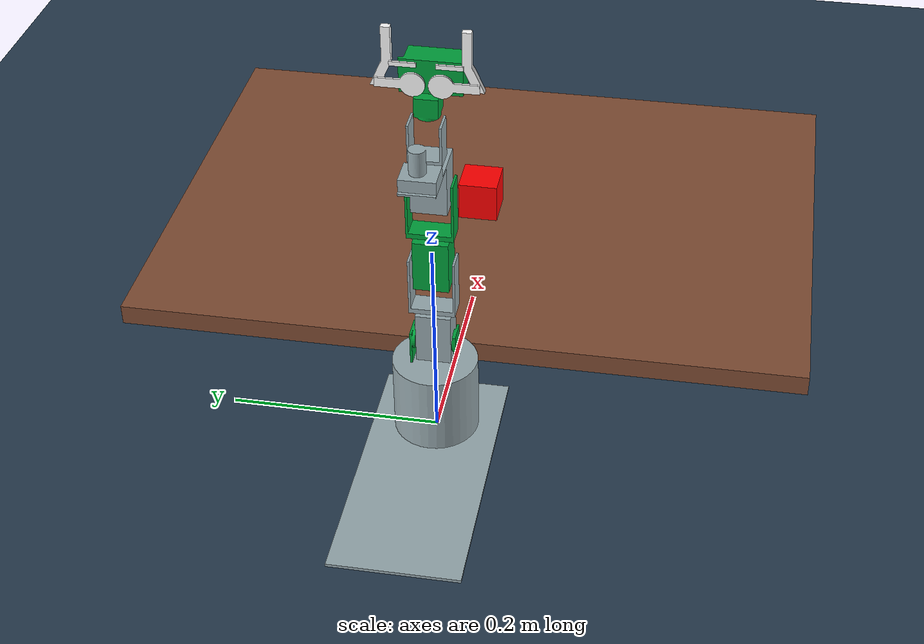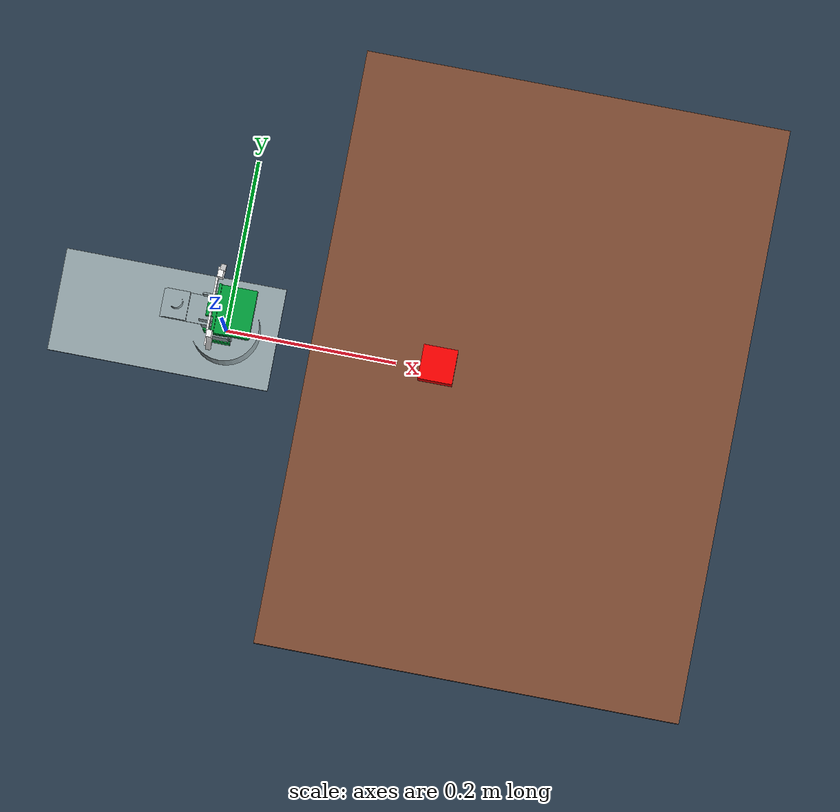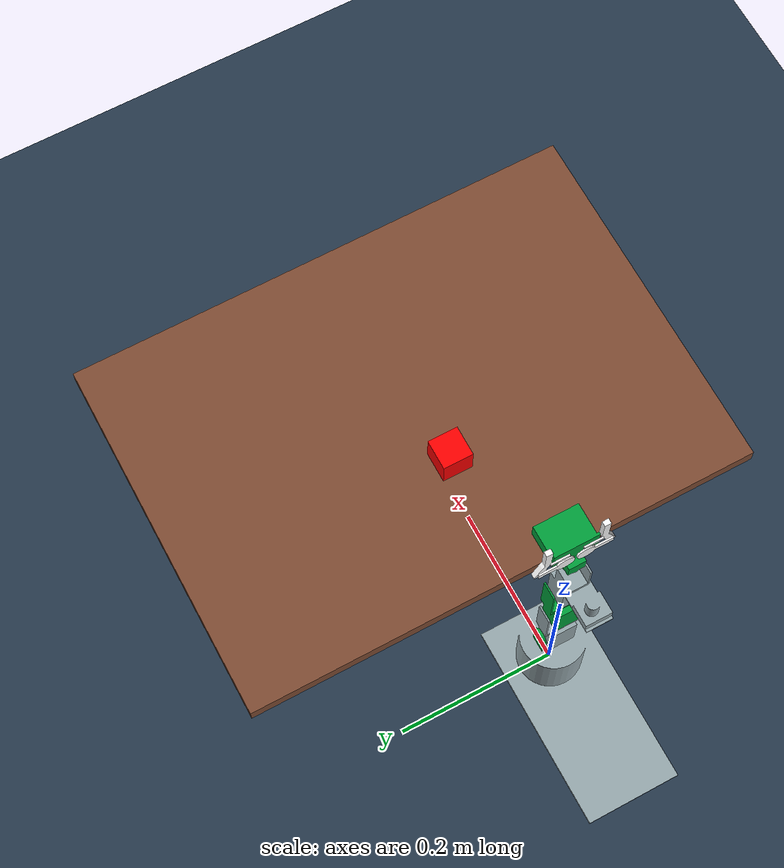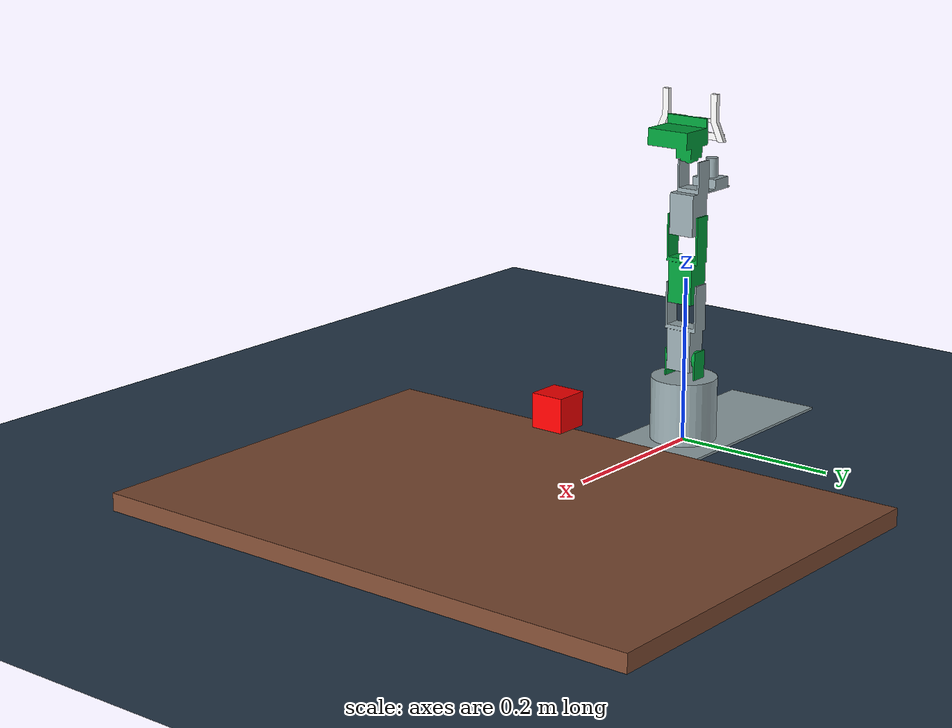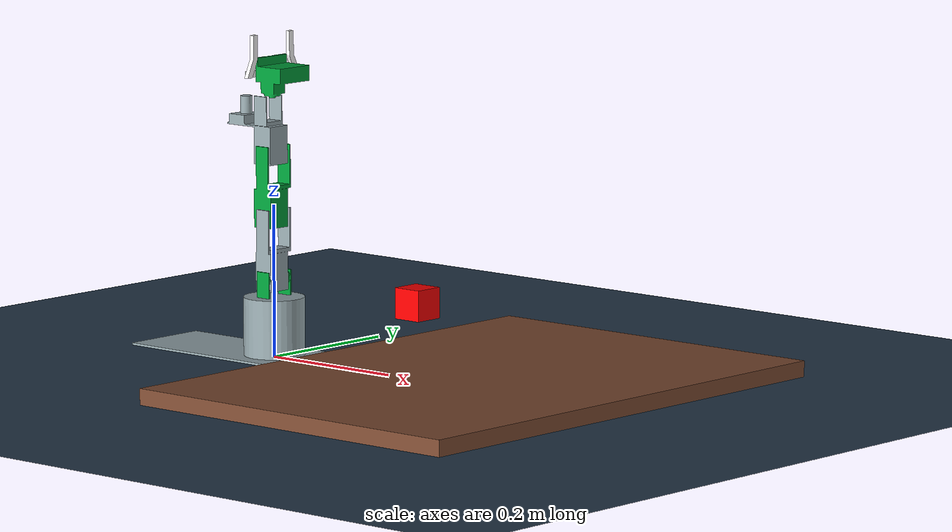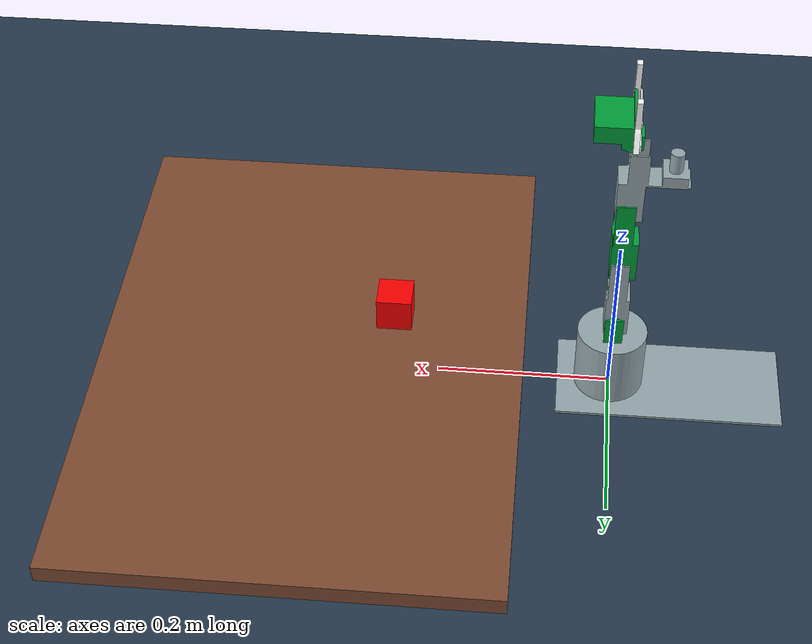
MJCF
<mujoco model="dofbot">
  <compiler angle="radian"/>

  <option timestep="0.005" integrator="implicitfast" jacobian="dense"/>

  <size njmax="200" nconmax="50" nstack="10000"/>

  <visual>
    <global offwidth="800" offheight="800"/>
    <quality shadowsize="2048"/>
    <map force="0.1" zfar="30"/>
    <rgba haze="0.15 0.25 0.35 1"/>
  </visual>

  <default>
    <joint limited="true" armature="0.01" damping="1" frictionloss="0.02"/>
    <geom friction="1.5"/>
  </default>

  <asset>
    <texture type="skybox" colorspace="auto" builtin="gradient" rgb1="0.3 0.5 0.7" rgb2="0 0 0" width="512" height="3072"/>
    <texture type="2d" colorspace="auto" name="texplane" builtin="checker" mark="cross" rgb1="0.2 0.3 0.4" rgb2="0.1 0.15 0.2" markrgb="0.8 0.8 0.8" width="512" height="512"/>
    <texture type="cube" colorspace="auto" name="texgeom" builtin="flat" mark="cross" rgb1="0.8 0.6 0.4" rgb2="0.8 0.6 0.4" markrgb="1 1 1" width="127" height="762"/>
    <material name="matplane" texture="texplane" texuniform="true" reflectance="0.3"/>
    <material name="matgeom" texture="texgeom" texuniform="true" rgba="0.8 0.6 0.4 1"/>
    <mesh name="base_link_collider" content_type="model/stl" file="/home/robousr/Dev/mujoco_ws/install/robotx_description/share/robotx_description/meshes/base_link_collider.STL"/>
    <mesh name="link1_collider" content_type="model/stl" file="/home/robousr/Dev/mujoco_ws/install/robotx_description/share/robotx_description/meshes/link1_collider.STL"/>
    <mesh name="link2_collider" content_type="model/stl" file="/home/robousr/Dev/mujoco_ws/install/robotx_description/share/robotx_description/meshes/link2_collider.STL"/>
    <mesh name="link3_collider" content_type="model/stl" file="/home/robousr/Dev/mujoco_ws/install/robotx_description/share/robotx_description/meshes/link3_collider.STL"/>
    <mesh name="link4_collider" content_type="model/stl" file="/home/robousr/Dev/mujoco_ws/install/robotx_description/share/robotx_description/meshes/link4_collider.STL"/>
    <mesh name="link5_collider" content_type="model/stl" file="/home/robousr/Dev/mujoco_ws/install/robotx_description/share/robotx_description/meshes/link5_collider.STL"/>
    <mesh name="link5a1_collider" content_type="model/stl" file="/home/robousr/Dev/mujoco_ws/install/robotx_description/share/robotx_description/meshes/link5a1_collider.STL"/>
    <mesh name="link5b1_collider" content_type="model/stl" file="/home/robousr/Dev/mujoco_ws/install/robotx_description/share/robotx_description/meshes/link5b1_collider.STL"/>
    <mesh name="link5a2_collider" content_type="model/stl" file="/home/robousr/Dev/mujoco_ws/install/robotx_description/share/robotx_description/meshes/link5a2_collider.STL"/>
    <mesh name="link5b2_collider" content_type="model/stl" file="/home/robousr/Dev/mujoco_ws/install/robotx_description/share/robotx_description/meshes/link5b2_collider.STL"/>
    <mesh name="link5a3_collider" content_type="model/stl" file="/home/robousr/Dev/mujoco_ws/install/robotx_description/share/robotx_description/meshes/link5a3_collider.STL"/>
    <mesh name="link5b3_collider" content_type="model/stl" file="/home/robousr/Dev/mujoco_ws/install/robotx_description/share/robotx_description/meshes/link5b3_collider.STL"/>
  </asset>

  <worldbody>
    <geom type="mesh" rgba="0.59 0.66 0.68 1" mesh="base_link_collider"/>
    <geom name="floor" size="0 0 0.25" type="plane" material="matplane"/>
    <light pos="0 0 5" dir="0 0 -1" castshadow="false" diffuse="0.2 0.2 0.2" specular="0 0 0"/>
    <light target="link1" pos="0 0 4" dir="0 0 -1" diffuse="0.8 0.8 0.8" mode="targetbodycom"/>
    <body name="link1" pos="0 0 0.0607">
      <joint name="joint1" pos="0 0 0" axis="0 0 1" range="-1.5708 1.5708" actuatorfrcrange="-100 100"/>
      <geom type="mesh" rgba="0 0.63 0.23 1" mesh="link1_collider"/>
      <body name="link2" pos="0 -0.00031873 0.04145" quat="0.5 -0.5 -0.5 -0.5">
        <joint name="joint2" pos="0 0 0" axis="0 0 1" range="-1.5708 1.5708" actuatorfrcrange="-100 100"/>
        <geom type="mesh" rgba="0.59 0.66 0.68 1" mesh="link2_collider"/>
        <body name="link3" pos="0.08285 0 0">
          <joint name="joint3" pos="0 0 0" axis="0 0 1" range="-1.5708 1.5708" actuatorfrcrange="-100 100"/>
          <geom type="mesh" rgba="0 0.63 0.23 1" mesh="link3_collider"/>
          <body name="link4" pos="0.08285 0 0">
            <joint name="joint4" pos="0 0 0" axis="0 0 1" range="-1.5708 1.5708" actuatorfrcrange="-100 100"/>
            <geom type="mesh" rgba="0.59 0.66 0.68 1" mesh="link4_collider"/>
            <body name="link5" pos="0.07385 -0.001 0" quat="0.707107 0 0.707107 0">
              <joint name="joint5" pos="0 0 0" axis="0 0 1" range="-1.5708 1.5708" actuatorfrcrange="-100 100"/>
              <geom type="mesh" rgba="0 0.63 0.23 1" mesh="link5_collider"/>
              <body name="link5a1" pos="0.0124 0.001 0.0322" quat="0.707107 0.707107 0 0">
                <joint name="joint5a1" pos="0 0 0" axis="0 0 1" range="-1.5708 1.5708" actuatorfrcrange="-100 100"/>
                <geom type="mesh" rgba="1 1 1 1" mesh="link5a1_collider"/>
                <body name="link5a2" pos="0.03 0 0.0045">
                  <joint name="joint5a2" pos="0 0 0" axis="0 0 1" range="-1.5708 1.5708" actuatorfrcrange="-100 100"/>
                  <geom type="mesh" rgba="1 1 1 1" mesh="link5a2_collider"/>
                </body>
              </body>
              <body name="link5a3" pos="0.0045 -0.0005 0.0502" quat="0.707107 0.707107 0 0">
                <joint name="joint5a3" pos="0 0 0" axis="0 0 1" range="-1.5708 1.5708" actuatorfrcrange="-100 100"/>
                <geom type="mesh" rgba="1 1 1 1" mesh="link5a3_collider"/>
              </body>
              <body name="link5b1" pos="-0.01215 -0.0035 0.0322" quat="0.707107 0.707107 0 0">
                <joint name="joint5b1" pos="0 0 0" axis="0 0 1" range="-1.5708 1.5708" actuatorfrcrange="-100 100"/>
                <geom type="mesh" rgba="1 1 1 1" mesh="link5b1_collider"/>
                <body name="link5b2" pos="-0.03 -0.0002 0">
                  <joint name="joint5b2" pos="0 0 0" axis="0 0 1" range="-1.5708 1.5708" actuatorfrcrange="-100 100"/>
                  <geom type="mesh" rgba="1 1 1 1" mesh="link5b2_collider"/>
                </body>
              </body>
              <body name="link5b3" pos="-0.0045 -0.0005 0.0502" quat="0.707107 0.707107 0 0">
                <joint name="joint5b3" pos="0 0 0" axis="0 0 1" range="-1.5708 1.5708" actuatorfrcrange="-100 100"/>
                <geom type="mesh" rgba="1 1 1 1" mesh="link5b3_collider"/>
              </body>
            </body>
          </body>
        </body>
      </body>
    </body>
    <body name="table" pos="0.35 0 0">
      <geom size="0.25 0.35 0.02" type="box" rgba="0.5 0.3 0.2 1"/>
    </body>
    <body name="cube" pos="0.25 0 0.1">
      <joint type="free" armature="0" damping="0" frictionloss="0"/>
      <geom size="0.02 0.02 0.02" type="box" friction="1 0.1 0.1" mass="0.01" rgba="1 0 0 1"/>
    </body>
  </worldbody>

  <contact>
    <exclude body1="world" body2="link1"/>
    <exclude body1="link5a1" body2="link5b1"/>
    <exclude body1="link5a2" body2="link5a3"/>
    <exclude body1="link5b2" body2="link5b3"/>
  </contact>

  <equality>
    <joint joint1="joint5a2" joint2="joint5a1" polycoef="0 -1 0 0 0" solimp="0.99 0.999"/>
    <joint joint1="joint5a3" joint2="joint5a1" polycoef="0 1 0 0 0" solimp="0.99 0.999"/>
    <joint joint1="joint5b1" joint2="joint5a1" polycoef="0 -1 0 0 0" solimp="0.99 0.999"/>
    <joint joint1="joint5b2" joint2="joint5a1" polycoef="0 1 0 0 0" solimp="0.99 0.999"/>
    <joint joint1="joint5b3" joint2="joint5a1" polycoef="0 -1 0 0 0" solimp="0.99 0.999"/>
  </equality>

  <actuator>
    <general name="joint1" joint="joint1" ctrlrange="-1.57 1.57" biastype="affine" gainprm="50" biasprm="0 -50"/>
    <general name="joint2" joint="joint2" ctrlrange="-1.57 1.57" biastype="affine" gainprm="50" biasprm="0 -50"/>
    <general name="joint3" joint="joint3" ctrlrange="-1.57 1.57" biastype="affine" gainprm="50" biasprm="0 -50"/>
    <general name="joint4" joint="joint4" ctrlrange="-1.57 1.57" biastype="affine" gainprm="50" biasprm="0 -50"/>
    <general name="joint5" joint="joint5" ctrlrange="-1.57 1.57" biastype="affine" gainprm="50" biasprm="0 -50"/>
    <general name="joint5a1" joint="joint5a1" ctrlrange="-1.57 1.57" biastype="affine" gainprm="50" biasprm="0 -50"/>
  </actuator>
</mujoco>
